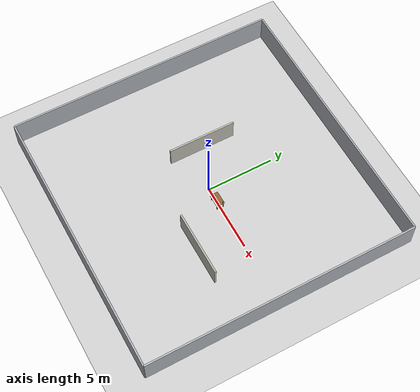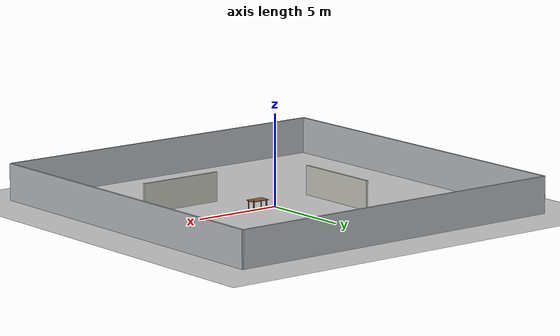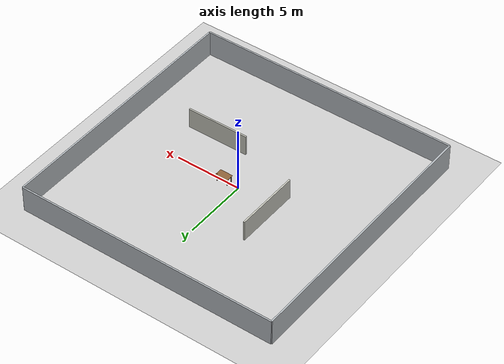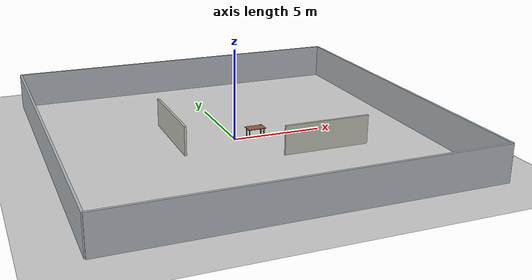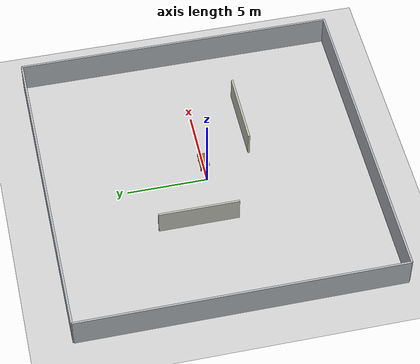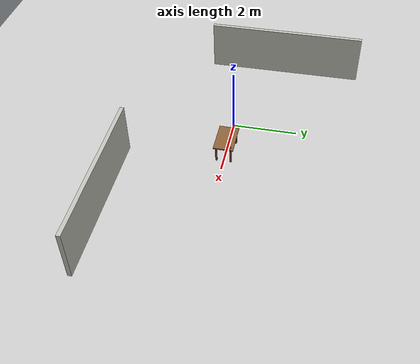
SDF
<?xml version="1.0" ?>
<sdf version="1.6">
  <world name="default">
    <gravity>0 0 -9.81</gravity>
    <physics name="high_grip_ode" type="ode">
      <max_step_size>0.001</max_step_size>
      <real_time_update_rate>1000</real_time_update_rate>
      <ode>
        <solver>
          <type>quick</type>
          <iters>80</iters>
          <sor>1.3</sor>
        </solver>
        <constraints>
          <cfm>0.0</cfm>
          <erp>0.2</erp>
          <contact_max_correcting_vel>0.05</contact_max_correcting_vel>
          <contact_surface_layer>0.001</contact_surface_layer>
        </constraints>
      </ode>
    </physics>
    <plugin name="gazebo_ros_state" filename="libgazebo_ros_state.so">
      <ros>
        <namespace>/gazebo</namespace>
      </ros>
      <update_rate>30.0</update_rate>
    </plugin>
    <scene>
      <ambient>0.4 0.4 0.4 1</ambient>
      <background>0.7 0.7 0.7 1</background>
      <shadows>true</shadows>
    </scene>
    <light name="sun" type="directional">
      <cast_shadows>true</cast_shadows>
      <pose>0 0 10 0 0 0</pose>
      <diffuse>0.8 0.8 0.8 1</diffuse>
      <specular>0.2 0.2 0.2 1</specular>
      <attenuation>
        <range>1000</range>
        <constant>0.9</constant>
        <linear>0.01</linear>
        <quadratic>0.001</quadratic>
      </attenuation>
      <direction>-0.5 0.1 -0.9</direction>
    </light>
    <model name="ground_plane">
      <static>true</static>
      <link name="link">
        <collision name="collision">
          <geometry>
            <plane>
              <normal>0 0 1</normal>
              <size>100 100</size>
            </plane>
          </geometry>
          <surface>
            <friction>
              <ode>
                <mu>2.5</mu>
                <mu2>2.5</mu2>
                <slip1>0.0</slip1>
                <slip2>0.0</slip2>
              </ode>
            </friction>
            <contact>
              <ode>
                <kp>1000000</kp>
                <kd>50</kd>
                <max_vel>0.05</max_vel>
                <min_depth>0.001</min_depth>
              </ode>
            </contact>
          </surface>
        </collision>
        <visual name="visual">
          <geometry>
            <plane>
              <normal>0 0 1</normal>
              <size>100 100</size>
            </plane>
          </geometry>
          <material>
            <ambient>0.8 0.8 0.8 1</ambient>
            <diffuse>0.8 0.8 0.8 1</diffuse>
          </material>
        </visual>
      </link>
    </model>
    <model name="room_walls">
      <static>true</static>
      <link name="north_wall">
        <pose>0 10 1 0 0 0</pose>
        <collision name="collision">
          <geometry>
            <box>
              <size>20 0.12 2</size>
            </box>
          </geometry>
        </collision>
        <visual name="visual">
          <geometry>
            <box>
              <size>20 0.12 2</size>
            </box>
          </geometry>
          <material>
            <ambient>0.7 0.72 0.74 1</ambient>
            <diffuse>0.7 0.72 0.74 1</diffuse>
            <specular>0.1 0.1 0.1 1</specular>
          </material>
        </visual>
      </link>
      <link name="south_wall">
        <pose>0 -10 1 0 0 0</pose>
        <collision name="collision">
          <geometry>
            <box>
              <size>20 0.12 2</size>
            </box>
          </geometry>
        </collision>
        <visual name="visual">
          <geometry>
            <box>
              <size>20 0.12 2</size>
            </box>
          </geometry>
          <material>
            <ambient>0.7 0.72 0.74 1</ambient>
            <diffuse>0.7 0.72 0.74 1</diffuse>
            <specular>0.1 0.1 0.1 1</specular>
          </material>
        </visual>
      </link>
      <link name="east_wall">
        <pose>10 0 1 0 0 0</pose>
        <collision name="collision">
          <geometry>
            <box>
              <size>0.12 20 2</size>
            </box>
          </geometry>
        </collision>
        <visual name="visual">
          <geometry>
            <box>
              <size>0.12 20 2</size>
            </box>
          </geometry>
          <material>
            <ambient>0.7 0.72 0.74 1</ambient>
            <diffuse>0.7 0.72 0.74 1</diffuse>
            <specular>0.1 0.1 0.1 1</specular>
          </material>
        </visual>
      </link>
      <link name="west_wall">
        <pose>-10 0 1 0 0 0</pose>
        <collision name="collision">
          <geometry>
            <box>
              <size>0.12 20 2</size>
            </box>
          </geometry>
        </collision>
        <visual name="visual">
          <geometry>
            <box>
              <size>0.12 20 2</size>
            </box>
          </geometry>
          <material>
            <ambient>0.7 0.72 0.74 1</ambient>
            <diffuse>0.7 0.72 0.74 1</diffuse>
            <specular>0.1 0.1 0.1 1</specular>
          </material>
        </visual>
      </link>
    </model>
    <model name="room_partitions">
      <static>true</static>
      <link name="left_partition">
        <pose>-3.2 1.2 0.8 0 0 0</pose>
        <collision name="collision">
          <geometry>
            <box>
              <size>0.12 5.0 1.6</size>
            </box>
          </geometry>
        </collision>
        <visual name="visual">
          <geometry>
            <box>
              <size>0.12 5.0 1.6</size>
            </box>
          </geometry>
          <material>
            <ambient>0.76 0.76 0.72 1</ambient>
            <diffuse>0.76 0.76 0.72 1</diffuse>
            <specular>0.08 0.08 0.08 1</specular>
          </material>
        </visual>
      </link>
      <link name="right_partition">
        <pose>4.0 -3.0 0.8 0 0 0</pose>
        <collision name="collision">
          <geometry>
            <box>
              <size>4.8 0.12 1.6</size>
            </box>
          </geometry>
        </collision>
        <visual name="visual">
          <geometry>
            <box>
              <size>4.8 0.12 1.6</size>
            </box>
          </geometry>
          <material>
            <ambient>0.76 0.76 0.72 1</ambient>
            <diffuse>0.76 0.76 0.72 1</diffuse>
            <specular>0.08 0.08 0.08 1</specular>
          </material>
        </visual>
      </link>
    </model>
    <model name="work_table">
      <static>true</static>
      <pose>1.2 0 0 0 0 0</pose>
      <link name="tabletop">
        <pose>0 0 0.53 0 0 0</pose>
        <collision name="collision">
          <geometry>
            <box>
              <size>1.0 0.6 0.04</size>
            </box>
          </geometry>
        </collision>
        <visual name="visual">
          <geometry>
            <box>
              <size>1.0 0.6 0.04</size>
            </box>
          </geometry>
          <material>
            <ambient>0.45 0.31 0.18 1</ambient>
            <diffuse>0.55 0.38 0.22 1</diffuse>
            <specular>0.12 0.09 0.06 1</specular>
          </material>
        </visual>
      </link>
      <link name="front_left_leg">
        <pose>0.42 0.22 0.255 0 0 0</pose>
        <collision name="collision">
          <geometry>
            <box>
              <size>0.05 0.05 0.51</size>
            </box>
          </geometry>
        </collision>
        <visual name="visual">
          <geometry>
            <box>
              <size>0.05 0.05 0.51</size>
            </box>
          </geometry>
          <material>
            <ambient>0.36 0.24 0.14 1</ambient>
            <diffuse>0.45 0.3 0.17 1</diffuse>
          </material>
        </visual>
      </link>
      <link name="front_right_leg">
        <pose>0.42 -0.22 0.255 0 0 0</pose>
        <collision name="collision">
          <geometry>
            <box>
              <size>0.05 0.05 0.51</size>
            </box>
          </geometry>
        </collision>
        <visual name="visual">
          <geometry>
            <box>
              <size>0.05 0.05 0.51</size>
            </box>
          </geometry>
          <material>
            <ambient>0.36 0.24 0.14 1</ambient>
            <diffuse>0.45 0.3 0.17 1</diffuse>
          </material>
        </visual>
      </link>
      <link name="back_left_leg">
        <pose>-0.42 0.22 0.255 0 0 0</pose>
        <collision name="collision">
          <geometry>
            <box>
              <size>0.05 0.05 0.51</size>
            </box>
          </geometry>
        </collision>
        <visual name="visual">
          <geometry>
            <box>
              <size>0.05 0.05 0.51</size>
            </box>
          </geometry>
          <material>
            <ambient>0.36 0.24 0.14 1</ambient>
            <diffuse>0.45 0.3 0.17 1</diffuse>
          </material>
        </visual>
      </link>
      <link name="back_right_leg">
        <pose>-0.42 -0.22 0.255 0 0 0</pose>
        <collision name="collision">
          <geometry>
            <box>
              <size>0.05 0.05 0.51</size>
            </box>
          </geometry>
        </collision>
        <visual name="visual">
          <geometry>
            <box>
              <size>0.05 0.05 0.51</size>
            </box>
          </geometry>
          <material>
            <ambient>0.36 0.24 0.14 1</ambient>
            <diffuse>0.45 0.3 0.17 1</diffuse>
          </material>
        </visual>
      </link>
    </model>
    <model name="edge_cube">
      <static>false</static>
      <pose>1.61 0.21 0.5725 0 0 0</pose>
      <link name="link">
        <inertial>
          <mass>0.05</mass>
          <inertia>
            <ixx>0.0000169</ixx>
            <iyy>0.0000169</iyy>
            <izz>0.0000169</izz>
            <ixy>0</ixy>
            <ixz>0</ixz>
            <iyz>0</iyz>
          </inertia>
        </inertial>
        <collision name="collision">
          <geometry>
            <box>
              <size>0.045 0.045 0.045</size>
            </box>
          </geometry>
          <surface>
            <friction>
              <ode>
                <mu>0.8</mu>
                <mu2>0.8</mu2>
              </ode>
            </friction>
          </surface>
        </collision>
        <visual name="visual">
          <geometry>
            <box>
              <size>0.045 0.045 0.045</size>
            </box>
          </geometry>
          <material>
            <ambient>0.8 0.12 0.08 1</ambient>
            <diffuse>0.9 0.18 0.12 1</diffuse>
            <specular>0.2 0.06 0.04 1</specular>
          </material>
        </visual>
      </link>
    </model>
  </world>
</sdf>
